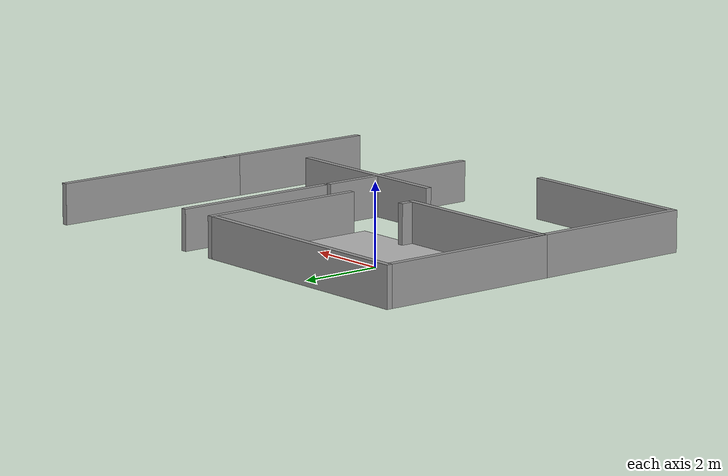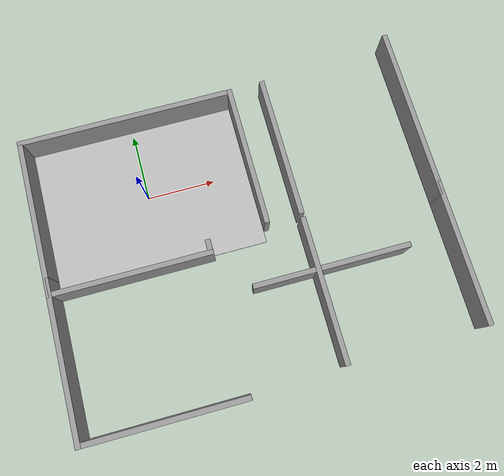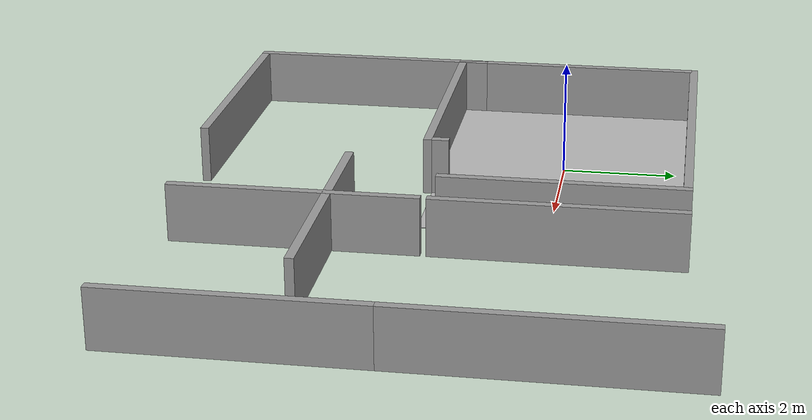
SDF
<?xml version='1.0'?>
<sdf version='1.6'>
  <model name='Workshop'>

    <link name='Wall_10'>
      <collision name='Wall_10_Collision'>
        <geometry>
          <box>
            <size>6.26 0.15 1</size>
          </box>
        </geometry>
        <pose frame=''>0 0 0.5 0 -0 0</pose>
      </collision>
      <visual name='Wall_10_Visual'>
        <pose frame=''>0 0 0.5 0 -0 0</pose>
        <geometry>
          <box>
            <size>6.26 0.15 1</size>
          </box>
        </geometry>
        <material>
          <script>
            <uri>file://media/materials/scripts/gazebo.material</uri>
            <name>Gazebo/Grey</name>
          </script>
          <ambient>0 0 0 1</ambient>
        </material>
      </visual>
      <pose frame=''>-0.0745 2.24856 0 0 0 0</pose>
    </link>
    <link name='Wall_11'>
      <collision name='Wall_11_Collision'>
        <geometry>
          <box>
            <size>4.199944 0.15 1</size>
          </box>
        </geometry>
        <pose frame=''>0 0 0.5 0 -0 0</pose>
      </collision>
      <visual name='Wall_11_Visual'>
        <pose frame=''>0 0 0.5 0 -0 0</pose>
        <geometry>
          <box>
            <size>4.199944 0.15 1</size>
          </box>
        </geometry>
        <material>
          <script>
            <uri>file://media/materials/scripts/gazebo.material</uri>
            <name>Gazebo/Grey</name>
          </script>
          <ambient>0 0 0 1</ambient>
        </material>
      </visual>
      <pose frame=''>3.12000 0.223500 0 0 0 -1.5708</pose>
    </link>
    <link name='Wall_29'>
      <collision name='Wall_29_Collision'>
        <geometry>
          <box>
            <size>4.199944 0.15 1</size>
          </box>
        </geometry>
        <pose frame=''>0 0 0.5 0 -0 0</pose>
      </collision>
      <visual name='Wall_29_Visual'>
        <pose frame=''>0 0 0.5 0 -0 0</pose>
        <geometry>
          <box>
            <size>4.199944 0.15 1</size>
          </box>
        </geometry>
        <material>
          <script>
            <uri>file://media/materials/scripts/gazebo.material</uri>
            <name>Gazebo/Grey</name>
          </script>
          <ambient>0 0 0 1</ambient>
        </material>
      </visual>
      <pose frame=''>8.12000 -4.075000 0 0 0 -1.5708</pose>
    </link>
     <link name='Wall_25'>
      <collision name='Wall_25_Collision'>
        <geometry>
          <box>
            <size>4.199944 0.15 1</size>
          </box>
        </geometry>
        <pose frame=''>0 0 0.5 0 -0 0</pose>
      </collision>
      <visual name='Wall_25_Visual'>
        <pose frame=''>0 0 0.5 0 -0 0</pose>
        <geometry>
          <box>
            <size>4.199944 0.15 1</size>
          </box>
        </geometry>
        <material>
          <script>
            <uri>file://media/materials/scripts/gazebo.material</uri>
            <name>Gazebo/Grey</name>
          </script>
          <ambient>0 0 0 1</ambient>
        </material>
      </visual>
      <pose frame=''>4.12000 -4.075000 0 0 0 -1.5708</pose>
    </link>
     <link name='Wall_27'>
      <collision name='Wall_27_Collision'>
        <geometry>
          <box>
            <size>4.199944 0.15 1</size>
          </box>
        </geometry>
        <pose frame=''>0 0 0.5 0 -0 0</pose>
      </collision>
      <visual name='Wall_27_Visual'>
        <pose frame=''>0 0 0.5 0 -0 0</pose>
        <geometry>
          <box>
            <size>5.199944 0.15 1</size>
          </box>
        </geometry>
        <material>
          <script>
            <uri>file://media/materials/scripts/gazebo.material</uri>
            <name>Gazebo/Grey</name>
          </script>
          <ambient>0 0 0 1</ambient>
        </material>
      </visual>
      <pose frame=''>8.12000 0.223500 0 0 0 -1.5708</pose>
    </link>
      <link name='Wall_21'>
      <collision name='Wall_21_Collision'>
        <geometry>
          <box>
            <size>4.199944 0.15 1</size>
          </box>
        </geometry>
        <pose frame=''>0 0 0.5 0 -0 0</pose>
      </collision>
      <visual name='Wall_21_Visual'>
        <pose frame=''>0 0 0.5 0 -0 0</pose>
        <geometry>
          <box>
            <size>4.199944 0.15 1</size>
          </box>
        </geometry>
        <material>
          <script>
            <uri>file://media/materials/scripts/gazebo.material</uri>
            <name>Gazebo/Grey</name>
          </script>
          <ambient>0 0 0 1</ambient>
        </material>
      </visual>
      <pose frame=''>4.12000 0.223500 0 0 0 -1.5708</pose>
    </link>
    <link name='Wall_23'>
      <collision name='Wall_23_Collision'>
        <geometry>
          <box>
            <size>4.557060 0.15 1</size>
          </box>
        </geometry>
        <pose frame=''>0 0 0.5 0 -0 0</pose>
      </collision>
      <visual name='Wall_23_Visual'>
        <pose frame=''>0 0 0.5 0 -0 0</pose>
        <geometry>
          <box>
            <size>4.557060 0.15 1</size>
          </box>
        </geometry>
        <material>
          <script>
            <uri>file://media/materials/scripts/gazebo.material</uri>
            <name>Gazebo/Grey</name>
          </script>
          <ambient>0 0 0 1</ambient>
        </material>
      </visual>
      <pose frame=''>-3.129500 -4.075000 0 0 0 -1.5708</pose>
    </link>
    <link name='Wall_13'>
      <collision name='Wall_13_Collision'>
        <geometry>
          <box>
            <size>4.557060 0.15 1</size>
          </box>
        </geometry>
        <pose frame=''>0 0 0.5 0 -0 0</pose>
      </collision>
      <visual name='Wall_13_Visual'>
        <pose frame=''>0 0 0.5 0 -0 0</pose>
        <geometry>
          <box>
            <size>4.557060 0.15 1</size>
          </box>
        </geometry>
        <material>
          <script>
            <uri>file://media/materials/scripts/gazebo.material</uri>
            <name>Gazebo/Grey</name>
          </script>
          <ambient>0 0 0 1</ambient>
        </material>
      </visual>
      <pose frame=''>-3.129500 -0.075000 0 0 0 -1.5708</pose>
    </link>
    <link name='Wall_22'>
      <collision name='Wall_22_Collision'>
        <geometry>
          <box>
            <size>4.521 0.15 1</size>
          </box>
        </geometry>
        <pose frame=''>0 0 0.5 0 -0 0</pose>
      </collision>
      <visual name='Wall_22_Visual'>
        <pose frame=''>0 0 0.5 0 -0 0</pose>
        <geometry>
          <box>
            <size>4.521 0.15 1</size>
          </box>
        </geometry>
        <material>
          <script>
            <uri>file://media/materials/scripts/gazebo.material</uri>
            <name>Gazebo/Grey</name>
          </script>
          <ambient>0 0 0 1</ambient>
        </material>
      </visual>
      <pose frame=''>-0.794000 -6.278500 0 0 -0 0</pose>
    </link>
    <link name='Wall_15'>
      <collision name='Wall_15_Collision'>
        <geometry>
          <box>
            <size>4.521 0.15 1</size>
          </box>
        </geometry>
        <pose frame=''>0 0 0.5 0 -0 0</pose>
      </collision>
      <visual name='Wall_15_Visual'>
        <pose frame=''>0 0 0.5 0 -0 0</pose>
        <geometry>
          <box>
            <size>4.521 0.15 1</size>
          </box>
        </geometry>
        <material>
          <script>
            <uri>file://media/materials/scripts/gazebo.material</uri>
            <name>Gazebo/Grey</name>
          </script>
          <ambient>0 0 0 1</ambient>
        </material>
      </visual>
      <pose frame=''>-0.794000 -2.278500 0 0 -0 0</pose>
    </link>
    <link name='Wall_20'>
      <collision name='Wall_20_Collision'>
        <geometry>
          <box>
            <size>4.521 0.15 1</size>
          </box>
        </geometry>
        <pose frame=''>0 0 0.5 0 -0 0</pose>
      </collision>
      <visual name='Wall_20_Visual'>
        <pose frame=''>0 0 0.5 0 -0 0</pose>
        <geometry>
          <box>
            <size>4.521 0.15 1</size>
          </box>
        </geometry>
        <material>
          <script>
            <uri>file://media/materials/scripts/gazebo.material</uri>
            <name>Gazebo/Grey</name>
          </script>
          <ambient>0 0 0 1</ambient>
        </material>
      </visual>
      <pose frame=''>4.521 -3.5 0 0 -0 0</pose>
    </link>
    <link name='Wall_17'>
      <collision name='Wall_17_Collision'>
        <geometry>
          <box>
            <size>0.302 0.15 1</size>
          </box>
        </geometry>
        <pose frame=''>0 0 0.5 0 -0 0</pose>
      </collision>
      <visual name='Wall_17_Visual'>
        <pose frame=''>0 0 0.5 0 -0 0</pose>
        <geometry>
          <box>
            <size>0.302 0.15 1</size>
          </box>
        </geometry>
        <material>
          <script>
            <uri>file://media/materials/scripts/gazebo.material</uri>
            <name>Gazebo/Grey</name>
          </script>
          <ambient>0 0 0 1</ambient>
        </material>
      </visual>
      <pose frame=''>1.392000 -2.057440 0 0 -0 1.5708</pose>
    </link>
    <link name='Wall_19'>
      <collision name='Wall_19_Collision'>
        <geometry>
          <box>
            <size>6.099 4.38 0.013</size>
          </box>
        </geometry>
        <pose frame=''>0 0 0.0065 0 -0 0</pose>
	 <surface>
          <friction>
            <ode>
              <mu>1</mu>
              <mu2>1</mu2>
            </ode>
          </friction>
	<bounce/>
            <contact>
              <ode/>
            </contact>
        </surface>
 	<max_contacts>10</max_contacts>
      </collision>
      <visual name='Wall_19_Visual'>
        <pose frame=''>0 0 0.0065 0 -0 0</pose>
        <geometry>
          <box>
            <size>6.099 4.38 0.013</size>
          </box>
        </geometry>
           <material>
          <script>
            <uri>model://Workshop/materials/scripts</uri>
            <uri>model://Workshop/materials/textures</uri>
            <name>rubber</name>
          </script>
        </material>
      </visual>
      <pose frame=''>-0.005116 -0.013556 0 0 -0 0</pose>
 <velocity_decay>
          <linear>0</linear>
          <angular>0</angular>
        </velocity_decay>
        <self_collide>0</self_collide>
        <kinematic>0</kinematic>
        <gravity>1</gravity>
    </link>
    <static>1</static>
  </model>
</sdf>
